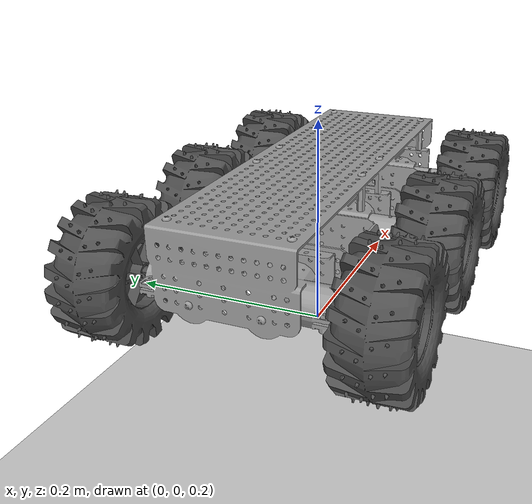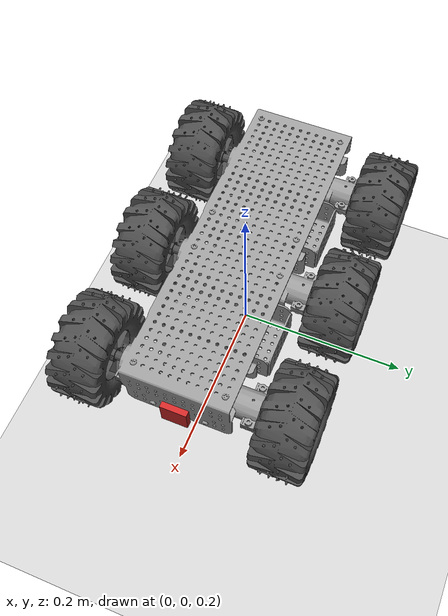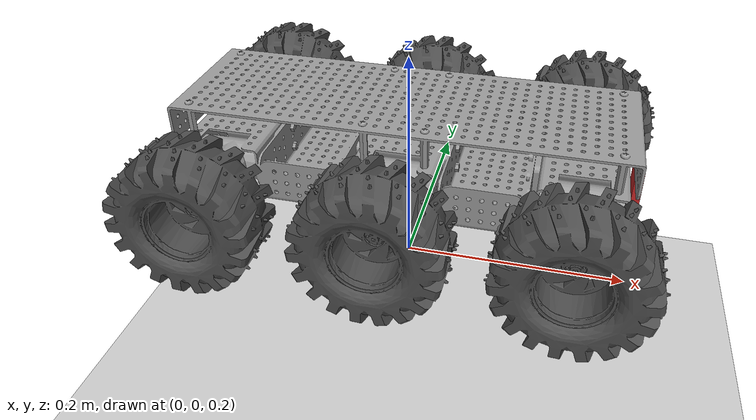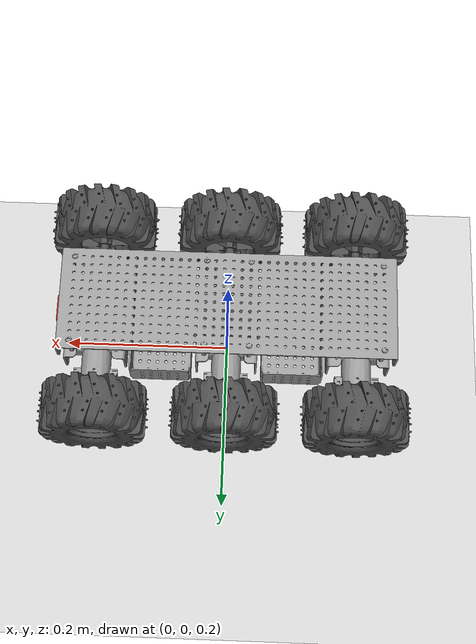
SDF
<sdf version="1.6">
 <world name="default">
  <light name="sun" type="directional">
   <pose>0 0 10 0 -0 0</pose>
   <diffuse>0.8 0.8 0.8 1</diffuse>
   <specular>0.1 0.1 0.1 1</specular>
   <attenuation>
    <range>1000</range>
    <constant>0.9</constant>
    <linear>0.01</linear>
    <quadratic>0.001</quadratic>
   </attenuation>
   <direction>-0.5 0.5 -1</direction>
  </light>
  <model name="ground_plane">
   <static>1</static>
   <link name="link">
    <collision name="collision">
     <geometry><plane><normal>0 0 1</normal><size>100 100</size></plane></geometry>
     <surface><friction><ode><mu>100</mu><mu2>50</mu2></ode></friction></surface>
    </collision>
    <visual name="visual">
     <cast_shadows>0</cast_shadows>
     <geometry><plane><normal>0 0 1</normal><size>100 100</size></plane></geometry>
     <material>
      <script><uri>file://media/materials/scripts/gazebo.material</uri><name>Gazebo/Grey</name></script>
     </material>
    </visual>
   </link>
  </model>
  <gravity>0 0 -9.8</gravity>
  <magnetic_field>6e-06 2.3e-05 -4.2e-05</magnetic_field>
  <atmosphere type="adiabatic"/>
  <physics name="default_physics" default="0" type="ode">
   <max_step_size>0.001</max_step_size>
   <real_time_factor>1</real_time_factor>
   <real_time_update_rate>1000</real_time_update_rate>
  </physics>
  <scene><ambient>0.4 0.4 0.4 1</ambient><background>0.7 0.7 0.7 1</background><shadows>1</shadows></scene>
  <spherical_coordinates>
   <surface_model>EARTH_WGS84</surface_model>
   <latitude_deg>0</latitude_deg>
   <longitude_deg>0</longitude_deg>
   <elevation>0</elevation>
   <heading_deg>0</heading_deg>
  </spherical_coordinates>
  <model name="car">
   <link name="base_link">
    <inertial>
     <pose>1e-06 0 0 0 -0 0</pose>
     <mass>3.30001</mass>
     <inertia>
      <ixx>0.005387</ixx>
      <ixy>0</ixy>
      <ixz>-2.32199e-08</ixz>
      <iyy>0.0411374</iyy>
      <iyz>0</iyz>
      <izz>0.0436714</izz>
     </inertia>
    </inertial>
    <collision name="base_link_collision">
     <pose>0 0 0.0256 0 -0 0</pose>
     <geometry><box><size>0.38 0.12 0.072</size></box></geometry>
    </collision>
    <collision name="base_link_fixed_joint_lump__camera_link_collision_1">
     <pose>0.1935 0 0.012 0 -0 0</pose>
     <geometry><box><size>0.007 0.03 0.03</size></box></geometry>
    </collision>
    <visual name="base_link_visual">
     <geometry>
      <mesh>
       <scale>1 1 1</scale>
       <uri>/home/humanoid/ros-workspace/src/roboschool2018/car_description/meshes/body.stl</uri>
      </mesh>
     </geometry>
     <material>
      <script><name>Gazebo/Grey</name><uri>file://media/materials/scripts/gazebo.material</uri></script>
     </material>
    </visual>
    <visual name="base_link_fixed_joint_lump__camera_link_visual_1">
     <pose>0.1935 0 0.012 0 -0 0</pose>
     <geometry><box><size>0.007 0.03 0.03</size></box></geometry>
     <material>
      <script><name>Gazebo/Red</name><uri>file://media/materials/scripts/gazebo.material</uri></script>
     </material>
    </visual>
    <sensor name="camera1" type="camera">
     <update_rate>30</update_rate>
     <camera name="head">
      <horizontal_fov>1.39626</horizontal_fov>
      <image><width>800</width><height>800</height><format>R8G8B8</format></image>
      <clip><near>0.02</near><far>300</far></clip>
      <noise><type>gaussian</type><mean>0</mean><stddev>0.007</stddev></noise>
     </camera>
     <plugin name="camera_controller" filename="libgazebo_ros_camera.so">
      <alwaysOn>true</alwaysOn>
      <updateRate>30.0</updateRate>
      <cameraName>car_gazebo/camera1</cameraName>
      <imageTopicName>image_raw</imageTopicName>
      <cameraInfoTopicName>camera_info</cameraInfoTopicName>
      <frameName>camera_link</frameName>
      <hackBaseline>0.07</hackBaseline>
      <distortionK1>0.0</distortionK1>
      <distortionK2>0.0</distortionK2>
      <distortionK3>0.0</distortionK3>
      <distortionT1>0.0</distortionT1>
      <distortionT2>0.0</distortionT2>
      <robotNamespace>/</robotNamespace>
     </plugin>
     <pose>0.1935 0 0.012 0 -0 0</pose>
    </sensor>
   </link>
   <link name="wheel_1_left">
    <pose>-0.15 -0.083 0 0 -0 0</pose>
    <inertial>
     <mass>0.15</mass>
     <inertia>
      <ixx>0.00019384</ixx>
      <ixy>0</ixy>
      <ixz>0</ixz>
      <iyy>0.00019384</iyy>
      <iyz>0</iyz>
      <izz>0.004725</izz>
     </inertia>
    </inertial>
    <collision name="wheel_1_left_collision">
     <pose>0 -0.032 0 1.5707 -0 0</pose>
     <geometry><cylinder><length>0.06</length><radius>0.063</radius></cylinder></geometry>
     <surface><friction><ode><mu>0.6</mu><mu2>0.6</mu2></ode></friction></surface>
    </collision>
    <visual name="wheel_1_left_visual">
     <geometry>
      <mesh>
       <scale>1 1 1</scale>
       <uri>/home/humanoid/ros-workspace/src/roboschool2018/car_description/meshes/wheel_left.stl</uri>
      </mesh>
     </geometry>
     <material>
      <script><name>Gazebo/DarkGrey</name><uri>file://media/materials/scripts/gazebo.material</uri></script>
     </material>
    </visual>
   </link>
   <joint name="wheel_1_left_joint" type="revolute">
    <child>wheel_1_left</child>
    <parent>base_link</parent>
    <axis>
     <xyz>0 -1 0</xyz>
     <limit><lower>-1e+16</lower><upper>1e+16</upper></limit>
     <dynamics><spring_reference>0</spring_reference><spring_stiffness>0</spring_stiffness></dynamics>
     <use_parent_model_frame>1</use_parent_model_frame>
    </axis>
   </joint>
   <link name="wheel_1_right">
    <pose>-0.15 0.083 0 0 -0 0</pose>
    <inertial>
     <mass>0.15</mass>
     <inertia>
      <ixx>0.00019384</ixx>
      <ixy>0</ixy>
      <ixz>0</ixz>
      <iyy>0.00019384</iyy>
      <iyz>0</iyz>
      <izz>0.004725</izz>
     </inertia>
    </inertial>
    <collision name="wheel_1_right_collision">
     <pose>0 0.032 0 1.5707 -0 0</pose>
     <geometry><cylinder><length>0.06</length><radius>0.063</radius></cylinder></geometry>
     <surface><friction><ode><mu>0.6</mu><mu2>0.6</mu2></ode></friction></surface>
    </collision>
    <visual name="wheel_1_right_visual">
     <geometry>
      <mesh>
       <scale>1 1 1</scale>
       <uri>/home/humanoid/ros-workspace/src/roboschool2018/car_description/meshes/wheel_right.stl</uri>
      </mesh>
     </geometry>
     <material>
      <script><name>Gazebo/DarkGrey</name><uri>file://media/materials/scripts/gazebo.material</uri></script>
     </material>
    </visual>
   </link>
   <joint name="wheel_1_right_joint" type="revolute">
    <child>wheel_1_right</child>
    <parent>base_link</parent>
    <axis>
     <xyz>0 -1 0</xyz>
     <limit><lower>-1e+16</lower><upper>1e+16</upper></limit>
     <dynamics><spring_reference>0</spring_reference><spring_stiffness>0</spring_stiffness></dynamics>
     <use_parent_model_frame>1</use_parent_model_frame>
    </axis>
   </joint>
   <link name="wheel_2_left">
    <pose>0 -0.083 0 0 -0 0</pose>
    <inertial>
     <mass>0.15</mass>
     <inertia>
      <ixx>0.00019384</ixx>
      <ixy>0</ixy>
      <ixz>0</ixz>
      <iyy>0.00019384</iyy>
      <iyz>0</iyz>
      <izz>0.004725</izz>
     </inertia>
    </inertial>
    <collision name="wheel_2_left_collision">
     <pose>0 -0.032 0 1.5707 -0 0</pose>
     <geometry><cylinder><length>0.06</length><radius>0.063</radius></cylinder></geometry>
     <surface><friction><ode><mu>0.6</mu><mu2>0.6</mu2></ode></friction></surface>
    </collision>
    <visual name="wheel_2_left_visual">
     <geometry>
      <mesh>
       <scale>1 1 1</scale>
       <uri>/home/humanoid/ros-workspace/src/roboschool2018/car_description/meshes/wheel_left.stl</uri>
      </mesh>
     </geometry>
     <material>
      <script><name>Gazebo/DarkGrey</name><uri>file://media/materials/scripts/gazebo.material</uri></script>
     </material>
    </visual>
   </link>
   <joint name="wheel_2_left_joint" type="revolute">
    <child>wheel_2_left</child>
    <parent>base_link</parent>
    <axis>
     <xyz>0 -1 0</xyz>
     <limit><lower>-1e+16</lower><upper>1e+16</upper></limit>
     <dynamics><spring_reference>0</spring_reference><spring_stiffness>0</spring_stiffness></dynamics>
     <use_parent_model_frame>1</use_parent_model_frame>
    </axis>
   </joint>
   <link name="wheel_2_right">
    <pose>0 0.083 0 0 -0 0</pose>
    <inertial>
     <mass>0.15</mass>
     <inertia>
      <ixx>0.00019384</ixx>
      <ixy>0</ixy>
      <ixz>0</ixz>
      <iyy>0.00019384</iyy>
      <iyz>0</iyz>
      <izz>0.004725</izz>
     </inertia>
    </inertial>
    <collision name="wheel_2_right_collision">
     <pose>0 0.032 0 1.5707 -0 0</pose>
     <geometry><cylinder><length>0.06</length><radius>0.063</radius></cylinder></geometry>
     <surface><friction><ode><mu>0.6</mu><mu2>0.6</mu2></ode></friction></surface>
    </collision>
    <visual name="wheel_2_right_visual">
     <geometry>
      <mesh>
       <scale>1 1 1</scale>
       <uri>/home/humanoid/ros-workspace/src/roboschool2018/car_description/meshes/wheel_right.stl</uri>
      </mesh>
     </geometry>
     <material>
      <script><name>Gazebo/DarkGrey</name><uri>file://media/materials/scripts/gazebo.material</uri></script>
     </material>
    </visual>
   </link>
   <joint name="wheel_2_right_joint" type="revolute">
    <child>wheel_2_right</child>
    <parent>base_link</parent>
    <axis>
     <xyz>0 -1 0</xyz>
     <limit><lower>-1e+16</lower><upper>1e+16</upper></limit>
     <dynamics><spring_reference>0</spring_reference><spring_stiffness>0</spring_stiffness></dynamics>
     <use_parent_model_frame>1</use_parent_model_frame>
    </axis>
   </joint>
   <link name="wheel_3_left">
    <pose>0.15 -0.083 0 0 -0 0</pose>
    <inertial>
     <mass>0.15</mass>
     <inertia>
      <ixx>0.00019384</ixx>
      <ixy>0</ixy>
      <ixz>0</ixz>
      <iyy>0.00019384</iyy>
      <iyz>0</iyz>
      <izz>0.004725</izz>
     </inertia>
    </inertial>
    <collision name="wheel_3_left_collision">
     <pose>0 -0.032 0 1.5707 -0 0</pose>
     <geometry><cylinder><length>0.06</length><radius>0.063</radius></cylinder></geometry>
     <surface><friction><ode><mu>0.6</mu><mu2>0.6</mu2></ode></friction></surface>
    </collision>
    <visual name="wheel_3_left_visual">
     <geometry>
      <mesh>
       <scale>1 1 1</scale>
       <uri>/home/humanoid/ros-workspace/src/roboschool2018/car_description/meshes/wheel_left.stl</uri>
      </mesh>
     </geometry>
     <material>
      <script><name>Gazebo/DarkGrey</name><uri>file://media/materials/scripts/gazebo.material</uri></script>
     </material>
    </visual>
   </link>
   <joint name="wheel_3_left_joint" type="revolute">
    <child>wheel_3_left</child>
    <parent>base_link</parent>
    <axis>
     <xyz>0 -1 0</xyz>
     <limit><lower>-1e+16</lower><upper>1e+16</upper></limit>
     <dynamics><spring_reference>0</spring_reference><spring_stiffness>0</spring_stiffness></dynamics>
     <use_parent_model_frame>1</use_parent_model_frame>
    </axis>
   </joint>
   <link name="wheel_3_right">
    <pose>0.15 0.083 0 0 -0 0</pose>
    <inertial>
     <mass>0.15</mass>
     <inertia>
      <ixx>0.00019384</ixx>
      <ixy>0</ixy>
      <ixz>0</ixz>
      <iyy>0.00019384</iyy>
      <iyz>0</iyz>
      <izz>0.004725</izz>
     </inertia>
    </inertial>
    <collision name="wheel_3_right_collision">
     <pose>0 0.032 0 1.5707 -0 0</pose>
     <geometry><cylinder><length>0.06</length><radius>0.063</radius></cylinder></geometry>
     <surface><friction><ode><mu>0.6</mu><mu2>0.6</mu2></ode></friction></surface>
    </collision>
    <visual name="wheel_3_right_visual">
     <geometry>
      <mesh>
       <scale>1 1 1</scale>
       <uri>/home/humanoid/ros-workspace/src/roboschool2018/car_description/meshes/wheel_right.stl</uri>
      </mesh>
     </geometry>
     <material>
      <script><name>Gazebo/DarkGrey</name><uri>file://media/materials/scripts/gazebo.material</uri></script>
     </material>
    </visual>
   </link>
   <joint name="wheel_3_right_joint" type="revolute">
    <child>wheel_3_right</child>
    <parent>base_link</parent>
    <axis>
     <xyz>0 -1 0</xyz>
     <limit><lower>-1e+16</lower><upper>1e+16</upper></limit>
     <dynamics><spring_reference>0</spring_reference><spring_stiffness>0</spring_stiffness></dynamics>
     <use_parent_model_frame>1</use_parent_model_frame>
    </axis>
   </joint>
   <static>0</static>
   <plugin name="car_plugin" filename="libcar_plugin.so">
    <p>0.2</p>
    <i>0.0</i>
    <d>0.0</d>
    <max_velocity>17.0</max_velocity>
    <robotNamespace>/</robotNamespace>
   </plugin>
   <pose>0 0 0.3 0 -0 0</pose>
  </model>
 </world>
</sdf>
